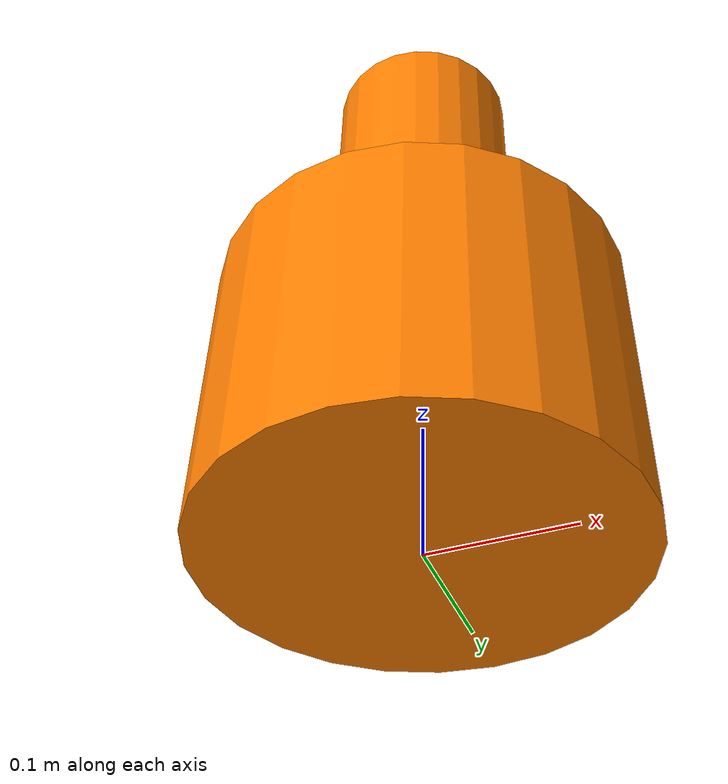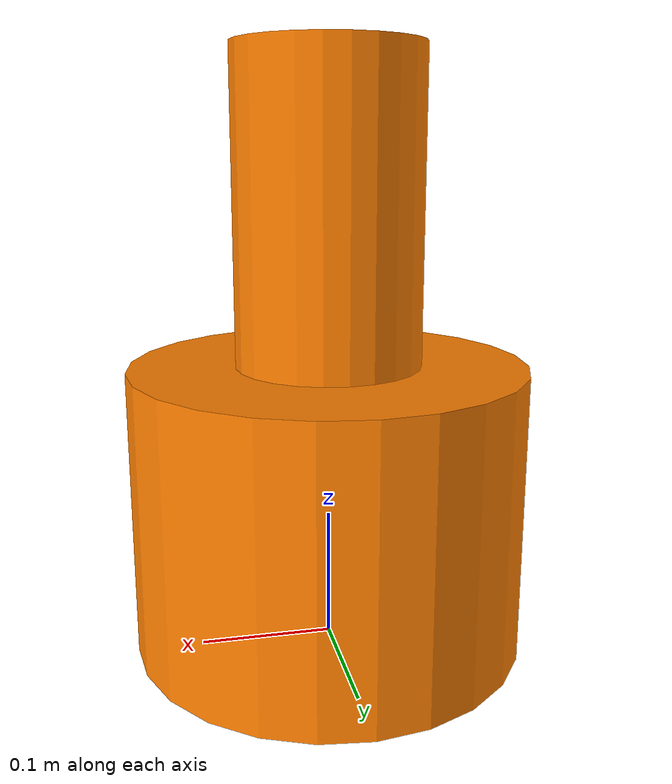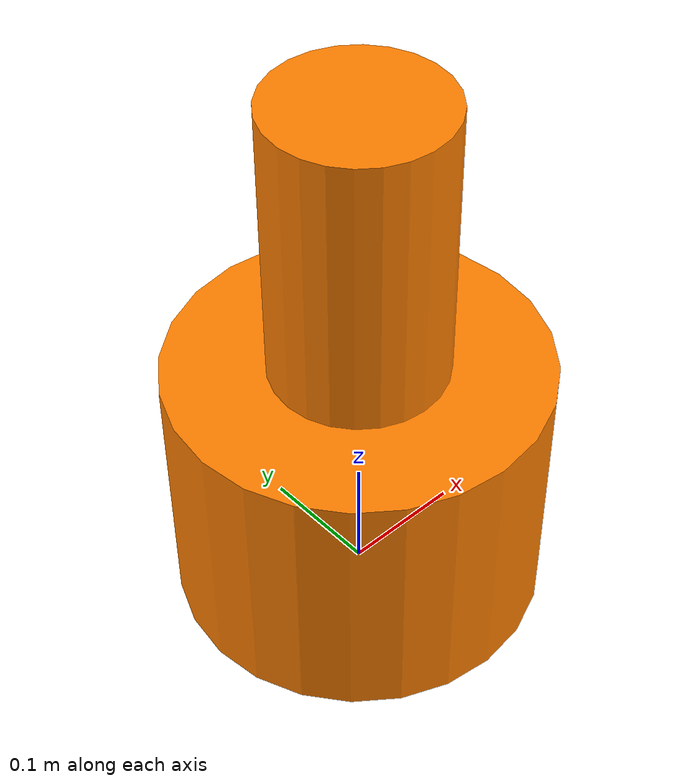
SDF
<?xml version="1.0" ?>
<sdf version="1.6">
  <model name="cone">
    <static>true</static>
    <link name="link">
      <!-- Base cylinder (wider bottom) -->
      <collision name="collision_base">
        <geometry>
          <cylinder>
            <radius>0.15</radius>
            <length>0.22</length>
          </cylinder>
        </geometry>
        <pose>0 0 0.11 0 0 0</pose>
      </collision>
      <visual name="visual_base">
        <geometry>
          <cylinder>
            <radius>0.15</radius>
            <length>0.22</length>
          </cylinder>
        </geometry>
        <pose>0 0 0.11 0 0 0</pose>
        <material>
          <ambient>1.0 0.5 0.0 1</ambient>
          <diffuse>1.0 0.5 0.0 1</diffuse>
          <specular>0.3 0.3 0.3 1</specular>
        </material>
      </visual>
      <!-- Top cylinder (narrower top) -->
      <collision name="collision_top">
        <geometry>
          <cylinder>
            <radius>0.07</radius>
            <length>0.23</length>
          </cylinder>
        </geometry>
        <pose>0 0 0.335 0 0 0</pose>
      </collision>
      <visual name="visual_top">
        <geometry>
          <cylinder>
            <radius>0.07</radius>
            <length>0.23</length>
          </cylinder>
        </geometry>
        <pose>0 0 0.335 0 0 0</pose>
        <material>
          <ambient>1.0 0.5 0.0 1</ambient>
          <diffuse>1.0 0.5 0.0 1</diffuse>
          <specular>0.3 0.3 0.3 1</specular>
        </material>
      </visual>
    </link>
  </model>
</sdf>
